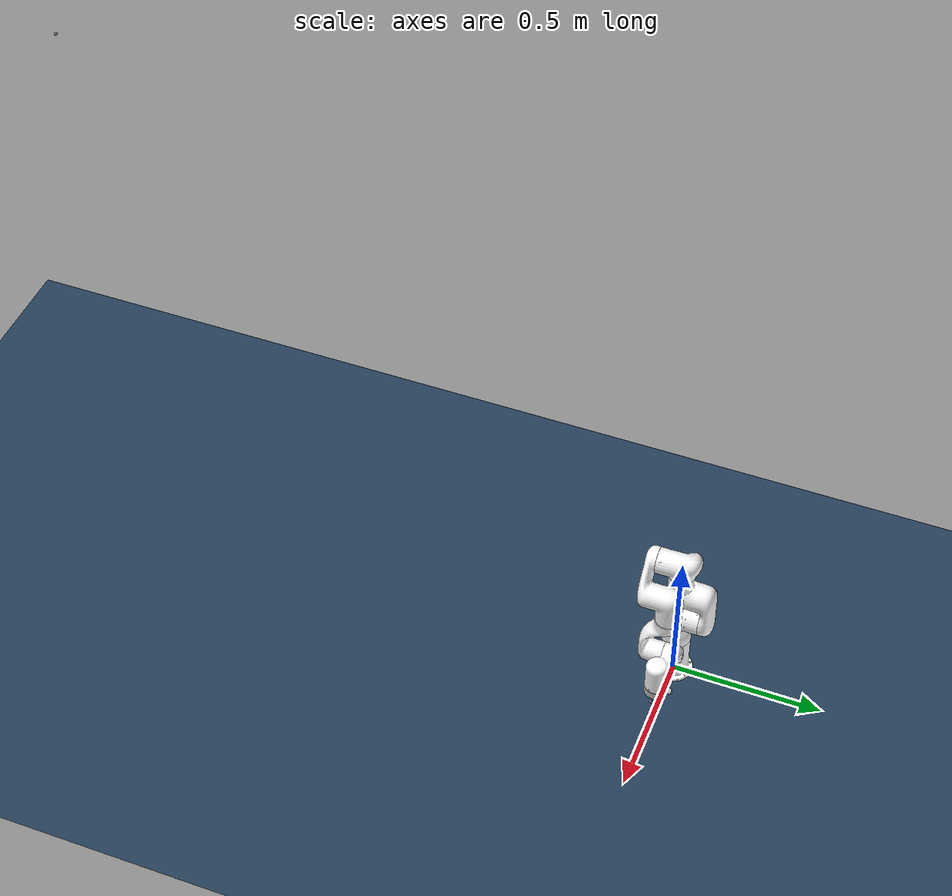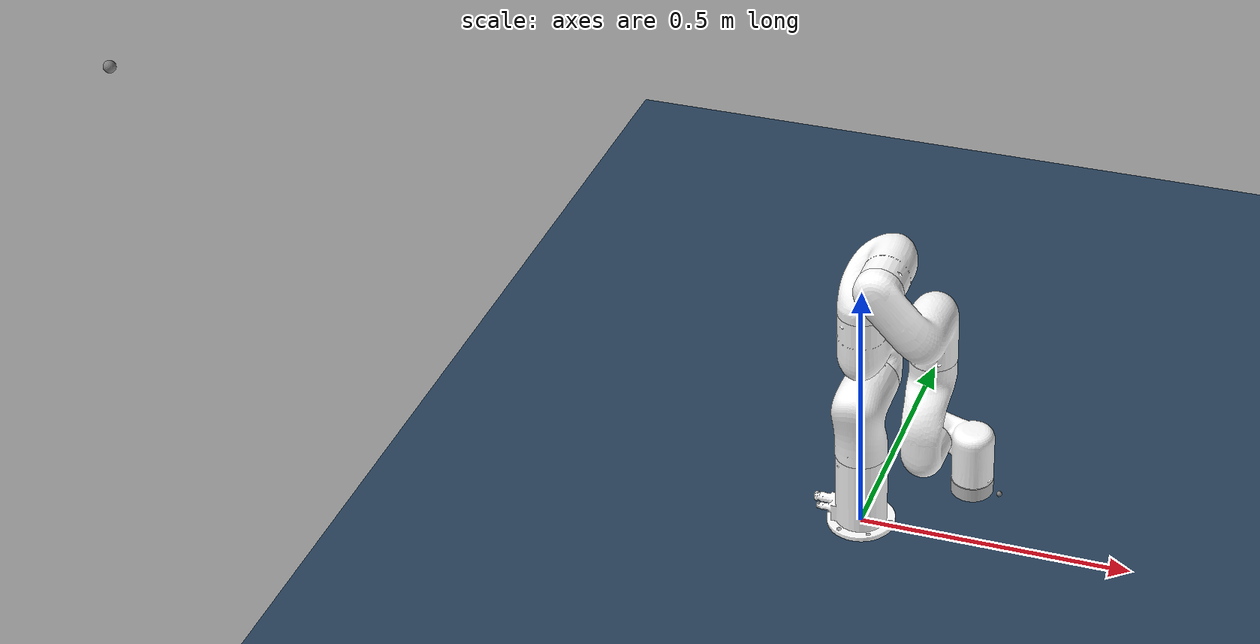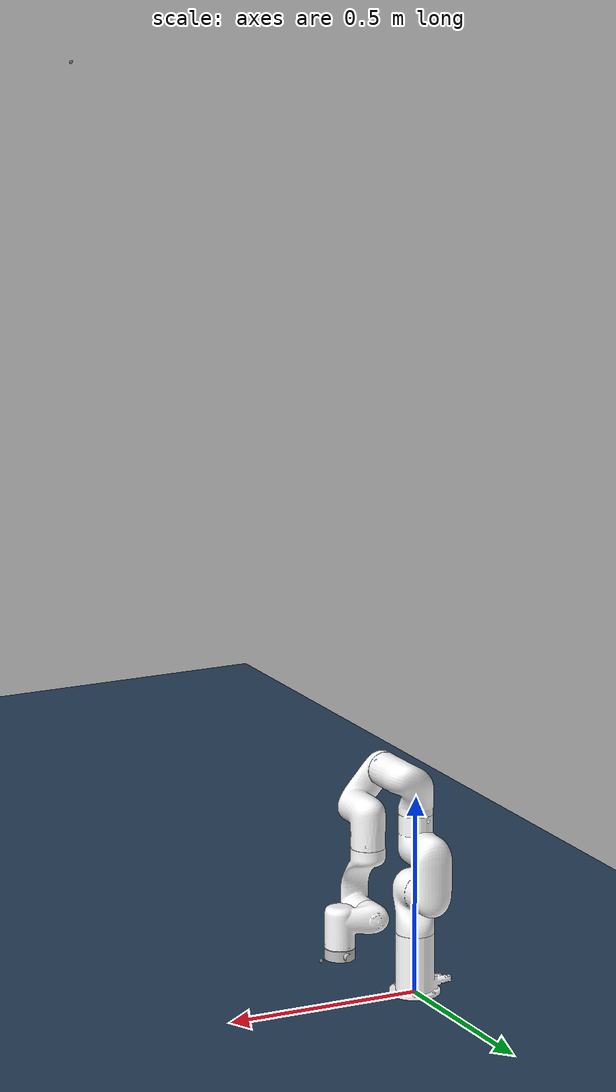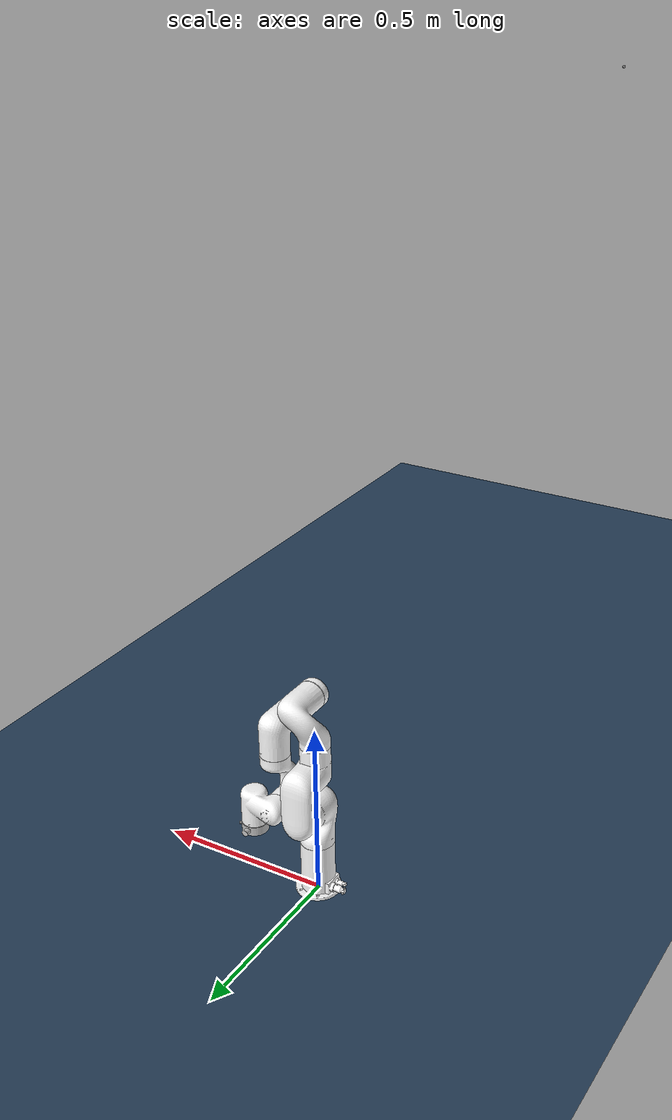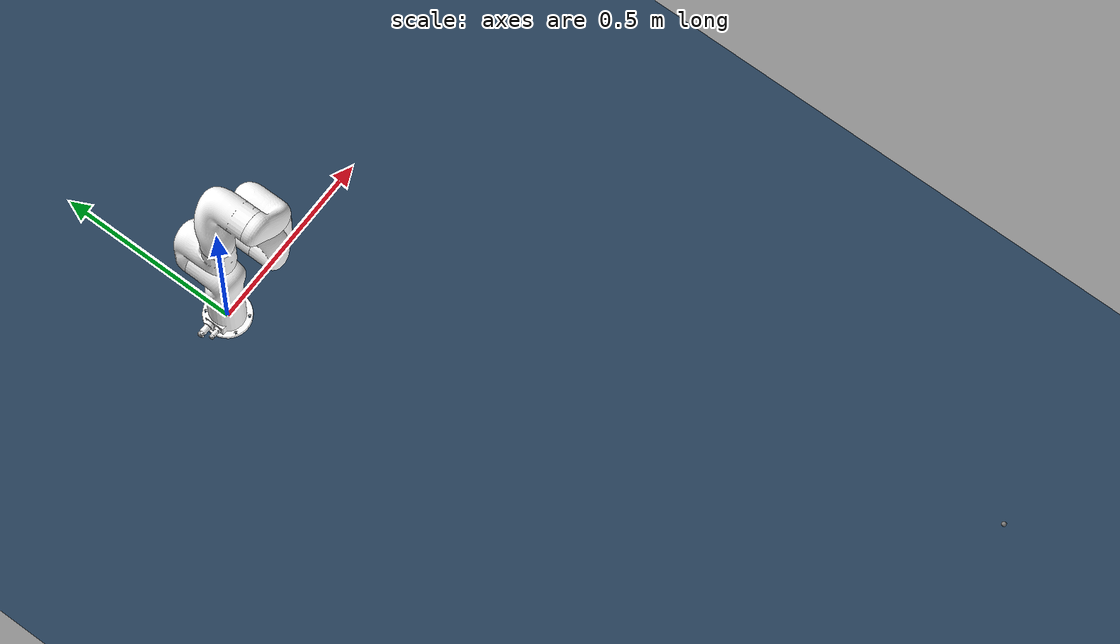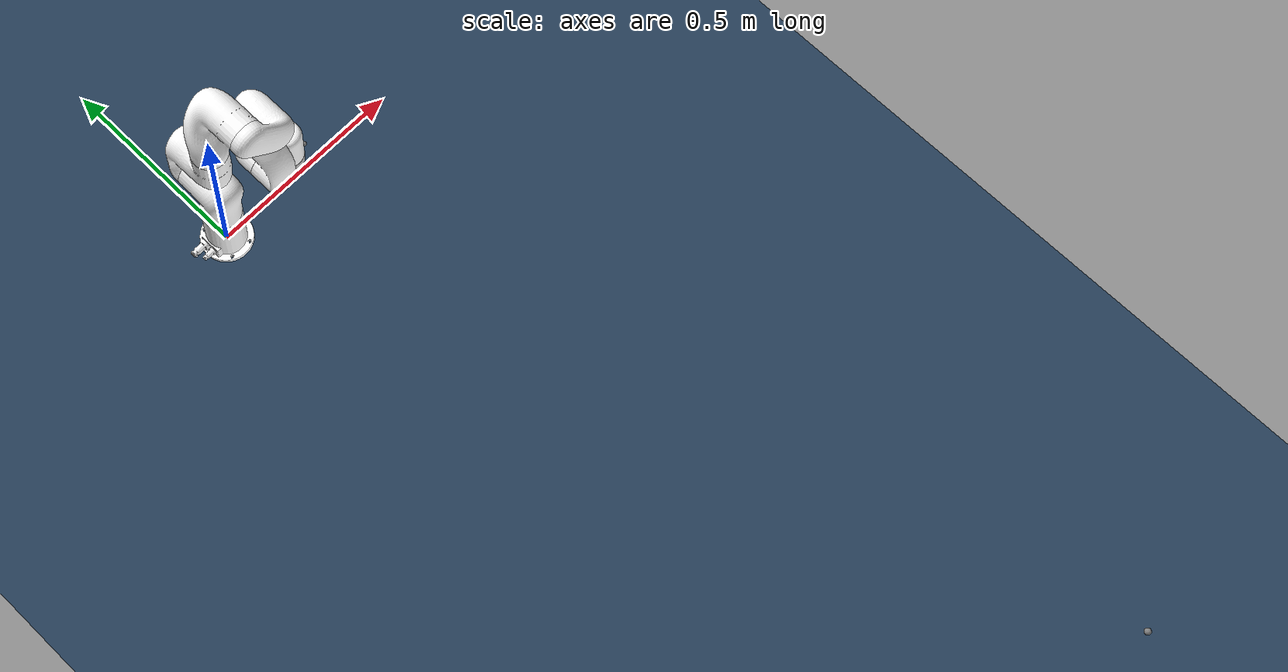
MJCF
<mujoco model="xarm7 scene">
  <include file="xarm7_globals.xml" />

  <compiler angle="radian" autolimits="true" />
  <option integrator="implicitfast" />

  <asset>
    <texture
      type="2d"
      name="groundplane"
      builtin="checker"
      mark="edge"
      rgb1="0.2 0.3 0.4"
      rgb2="0.1 0.2 0.3"
      markrgb="0.8 0.8 0.8"
      width="300"
      height="300"
    />
    <material
      name="groundplane"
      texture="groundplane"
      texuniform="true"
      texrepeat="5 5"
      reflectance="0.2"
    />
  </asset>

  <worldbody>
    <light pos="0 0 1.5" dir="0 0 -1" directional="true" />

    <geom
      name="floor"
      pos="0 0 0"
      size="0 0 0.05"
      type="plane"
      material="groundplane"
    />
    <!-- Scene Camera -->
    <site
      name="scene_camera_optical_frame"
      pos="0 -2.0 2"
      euler="3.99 0.000 0"
    />
    <camera
      name="scene_camera"
      pos="0 -2.0 2"
      fovy="58"
      mode="fixed"
      resolution="640 480"
      euler="0.849 0.000 0.0"
    />
    <include file="xarm7.xml" />
  </worldbody>

</mujoco>

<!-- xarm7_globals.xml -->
<mujoco model="xarm7_globals">

  <compiler angle="radian" meshdir="assets" autolimits="true" />
  <option integrator="implicitfast" />

  <asset>
    <mesh name="link_base" file="link_base.stl"/>
    <mesh name="link1" file="link1.stl"/>
    <mesh name="link2" file="link2.stl"/>
    <mesh name="link3" file="link3.stl"/>
    <mesh name="link4" file="link4.stl"/>
    <mesh name="link5" file="link5.stl"/>
    <mesh name="link6" file="link6.stl"/>
    <mesh name="end_tool" file="end_tool.stl"/>
  </asset>

  <actuator>
    <position joint="joint1" name="joint1" ctrlrange="-3.14 3.14" kp="1000" forcelimited="false" dampratio="1"/>
    <position joint="joint2" name="joint2" ctrlrange="-3.14 3.14" kp="1000" forcelimited="false" dampratio="1"/>
    <position joint="joint3" name="joint3" ctrlrange="-3.14 3.14" kp="1000" forcelimited="false" dampratio="1"/>
    <position joint="joint4" name="joint4" ctrlrange="-3.14 3.14" kp="1000" forcelimited="false" dampratio="1"/>
    <position joint="joint5" name="joint5" ctrlrange="-3.14 3.14" kp="1000" forcelimited="false" dampratio="1"/>
    <position joint="joint6" name="joint6" ctrlrange="-3.14 3.14" kp="1000" forcelimited="false" dampratio="1"/>
    <position joint="joint7" name="joint7" ctrlrange="-3.14 3.14" kp="1000" forcelimited="false" dampratio="1"/>
  </actuator>
</mujoco>

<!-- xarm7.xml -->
<mujoco model="xarm7">

    <geom type="mesh" rgba="1 1 1 1" mesh="link_base"/>
    <body name="link1" pos="0 0 0.267" gravcomp="1">
      <joint name="joint1" pos="0 0 0" axis="0 0 1" range="-6.28319 6.28319" actuatorfrcrange="-50 50" damping="10" frictionloss="1"/>
      <geom type="mesh" rgba="1 1 1 1" mesh="link1"/>
      <body name="link2" quat="0.707105 -0.707108 0 0" gravcomp="1">
        <joint name="joint2" pos="0 0 0" axis="0 0 1" range="-2.059 2.0944" actuatorfrcrange="-50 50" damping="10" frictionloss="1"/>
        <geom type="mesh" rgba="1 1 1 1" mesh="link2"/>
        <body name="link3" pos="0 -0.293 0" quat="0.707105 0.707108 0 0" gravcomp="1">
          <joint name="joint3" pos="0 0 0" axis="0 0 1" range="-6.28319 6.28319" actuatorfrcrange="-30 30" damping="5" frictionloss="1"/>
          <geom type="mesh" rgba="1 1 1 1" mesh="link3"/>
          <body name="link4" pos="0.0525 0 0" quat="0.707105 0.707108 0 0" gravcomp="1">
            <joint name="joint4" pos="0 0 0" axis="0 0 1" range="-0.19198 3.927" actuatorfrcrange="-30 30" damping="5" frictionloss="1"/>
            <geom type="mesh" rgba="1 1 1 1" mesh="link4"/>
            <body name="link5" pos="0.0775 -0.3425 0" quat="0.707105 0.707108 0 0" gravcomp="1">
              <joint name="joint5" pos="0 0 0" axis="0 0 1" range="-6.28319 6.28319" actuatorfrcrange="-30 30" damping="5" frictionloss="1"/>
              <geom type="mesh" rgba="1 1 1 1" mesh="link5"/>
              <body name="link6" quat="0.707105 0.707108 0 0" gravcomp="1">
                <joint name="joint6" pos="0 0 0" axis="0 0 1" range="-1.69297 3.14159" actuatorfrcrange="-20 20" damping="2" frictionloss="1"/>
                <geom type="mesh" rgba="1 1 1 1" mesh="link6"/>
                <body name="link7" pos="0.076 0.097 0" quat="0.707105 -0.707108 0 0" gravcomp="1">
                  <camera
                    name="wrist_camera"
                    pos="0.05 0 0"
                    fovy="58"
                    mode="fixed"
                    resolution="640 480"
                    euler="3.14 0 -1.57"
                  />
                  <site
                    name="wrist_camera_optical_frame"
                    pos="0.05 0 0"
                    euler="0 0 1.57"
                  />
                  <joint name="joint7" pos="0 0 0" axis="0 0 1" range="-6.28319 6.28319" actuatorfrcrange="-20 20" damping="2" frictionloss="1"/>
                  <geom type="mesh" rgba="0.753 0.753 0.753 1" mesh="end_tool"/>
                </body>
              </body>
            </body>
          </body>
        </body>
      </body>
    </body>
</mujoco>
